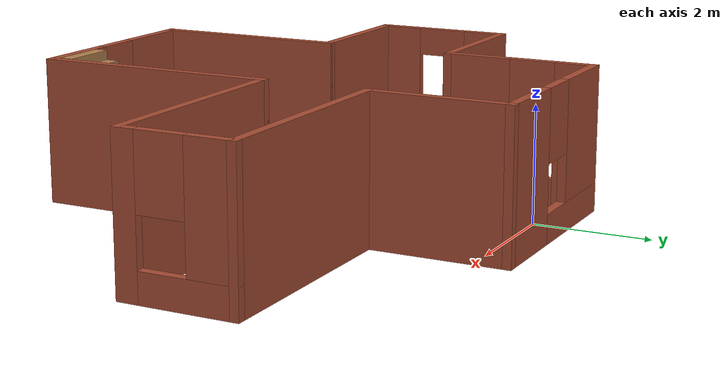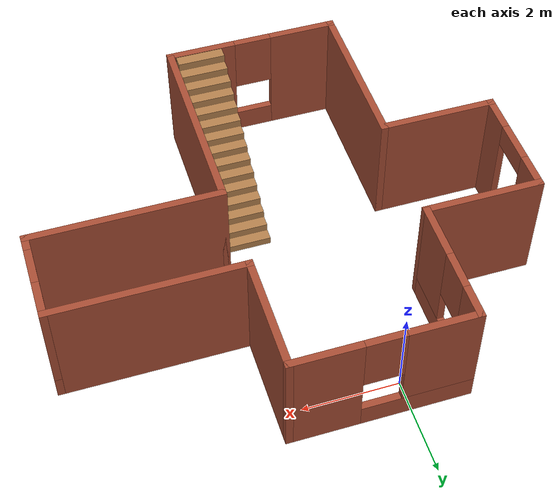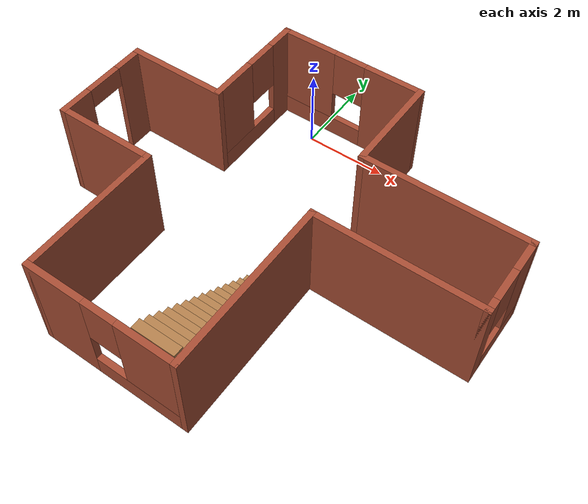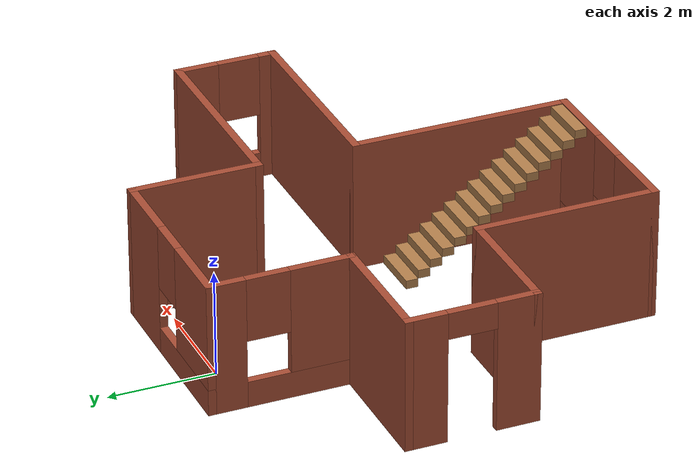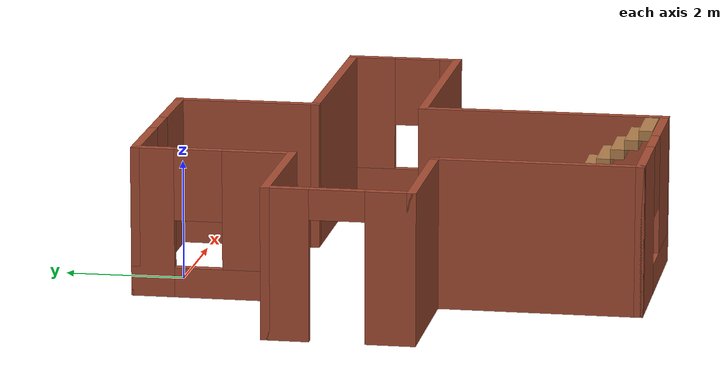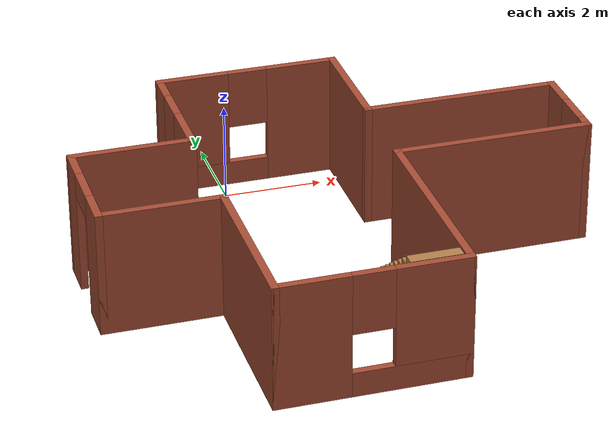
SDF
<?xml version='1.0'?>
<sdf version='1.7'>
  <model name='building'>
    <pose>1.3885 -3.598 0 0 -0 0</pose>
    <link name='Stairs_0'>
      <visual name='Stairs_0_Visual_0'>
        <pose>0.446582 -0.679804 0.083333 0 -0 0</pose>
        <geometry>
          <box>
            <size>1 0.233333 0.166667</size>
          </box>
        </geometry>
        <material>
          <script>
            <uri>file://media/materials/scripts/gazebo.material</uri>
            <name>Gazebo/Wood</name>
          </script>
          <ambient>1 1 1 1</ambient>
        </material>
        <meta>
          <layer>0</layer>
        </meta>
      </visual>
      <collision name='Stairs_0_Collision_0'>
        <geometry>
          <box>
            <size>1 0.233333 0.166667</size>
          </box>
        </geometry>
        <pose>0.446582 -0.679804 0.083333 0 -0 0</pose>
      </collision>
      <visual name='Stairs_0_Visual_1'>
        <pose>0.446582 -0.913137 0.25 0 -0 0</pose>
        <geometry>
          <box>
            <size>1 0.233333 0.166667</size>
          </box>
        </geometry>
        <material>
          <script>
            <uri>file://media/materials/scripts/gazebo.material</uri>
            <name>Gazebo/Wood</name>
          </script>
          <ambient>1 1 1 1</ambient>
        </material>
        <meta>
          <layer>0</layer>
        </meta>
      </visual>
      <collision name='Stairs_0_Collision_1'>
        <geometry>
          <box>
            <size>1 0.233333 0.166667</size>
          </box>
        </geometry>
        <pose>0.446582 -0.913137 0.25 0 -0 0</pose>
      </collision>
      <visual name='Stairs_0_Visual_2'>
        <pose>0.446582 -1.14647 0.416667 0 -0 0</pose>
        <geometry>
          <box>
            <size>1 0.233333 0.166667</size>
          </box>
        </geometry>
        <material>
          <script>
            <uri>file://media/materials/scripts/gazebo.material</uri>
            <name>Gazebo/Wood</name>
          </script>
          <ambient>1 1 1 1</ambient>
        </material>
        <meta>
          <layer>0</layer>
        </meta>
      </visual>
      <collision name='Stairs_0_Collision_2'>
        <geometry>
          <box>
            <size>1 0.233333 0.166667</size>
          </box>
        </geometry>
        <pose>0.446582 -1.14647 0.416667 0 -0 0</pose>
      </collision>
      <visual name='Stairs_0_Visual_3'>
        <pose>0.446582 -1.3798 0.583333 0 -0 0</pose>
        <geometry>
          <box>
            <size>1 0.233333 0.166667</size>
          </box>
        </geometry>
        <material>
          <script>
            <uri>file://media/materials/scripts/gazebo.material</uri>
            <name>Gazebo/Wood</name>
          </script>
          <ambient>1 1 1 1</ambient>
        </material>
        <meta>
          <layer>0</layer>
        </meta>
      </visual>
      <collision name='Stairs_0_Collision_3'>
        <geometry>
          <box>
            <size>1 0.233333 0.166667</size>
          </box>
        </geometry>
        <pose>0.446582 -1.3798 0.583333 0 -0 0</pose>
      </collision>
      <visual name='Stairs_0_Visual_4'>
        <pose>0.446582 -1.61314 0.75 0 -0 0</pose>
        <geometry>
          <box>
            <size>1 0.233333 0.166667</size>
          </box>
        </geometry>
        <material>
          <script>
            <uri>file://media/materials/scripts/gazebo.material</uri>
            <name>Gazebo/Wood</name>
          </script>
          <ambient>1 1 1 1</ambient>
        </material>
        <meta>
          <layer>0</layer>
        </meta>
      </visual>
      <collision name='Stairs_0_Collision_4'>
        <geometry>
          <box>
            <size>1 0.233333 0.166667</size>
          </box>
        </geometry>
        <pose>0.446582 -1.61314 0.75 0 -0 0</pose>
      </collision>
      <visual name='Stairs_0_Visual_5'>
        <pose>0.446582 -1.84647 0.916667 0 -0 0</pose>
        <geometry>
          <box>
            <size>1 0.233333 0.166667</size>
          </box>
        </geometry>
        <material>
          <script>
            <uri>file://media/materials/scripts/gazebo.material</uri>
            <name>Gazebo/Wood</name>
          </script>
          <ambient>1 1 1 1</ambient>
        </material>
        <meta>
          <layer>0</layer>
        </meta>
      </visual>
      <collision name='Stairs_0_Collision_5'>
        <geometry>
          <box>
            <size>1 0.233333 0.166667</size>
          </box>
        </geometry>
        <pose>0.446582 -1.84647 0.916667 0 -0 0</pose>
      </collision>
      <visual name='Stairs_0_Visual_6'>
        <pose>0.446582 -2.0798 1.08333 0 -0 0</pose>
        <geometry>
          <box>
            <size>1 0.233333 0.166667</size>
          </box>
        </geometry>
        <material>
          <script>
            <uri>file://media/materials/scripts/gazebo.material</uri>
            <name>Gazebo/Wood</name>
          </script>
          <ambient>1 1 1 1</ambient>
        </material>
        <meta>
          <layer>0</layer>
        </meta>
      </visual>
      <collision name='Stairs_0_Collision_6'>
        <geometry>
          <box>
            <size>1 0.233333 0.166667</size>
          </box>
        </geometry>
        <pose>0.446582 -2.0798 1.08333 0 -0 0</pose>
      </collision>
      <visual name='Stairs_0_Visual_7'>
        <pose>0.446582 -2.31314 1.25 0 -0 0</pose>
        <geometry>
          <box>
            <size>1 0.233333 0.166667</size>
          </box>
        </geometry>
        <material>
          <script>
            <uri>file://media/materials/scripts/gazebo.material</uri>
            <name>Gazebo/Wood</name>
          </script>
          <ambient>1 1 1 1</ambient>
        </material>
        <meta>
          <layer>0</layer>
        </meta>
      </visual>
      <collision name='Stairs_0_Collision_7'>
        <geometry>
          <box>
            <size>1 0.233333 0.166667</size>
          </box>
        </geometry>
        <pose>0.446582 -2.31314 1.25 0 -0 0</pose>
      </collision>
      <visual name='Stairs_0_Visual_8'>
        <pose>0.446582 -2.54647 1.41667 0 -0 0</pose>
        <geometry>
          <box>
            <size>1 0.233333 0.166667</size>
          </box>
        </geometry>
        <material>
          <script>
            <uri>file://media/materials/scripts/gazebo.material</uri>
            <name>Gazebo/Wood</name>
          </script>
          <ambient>1 1 1 1</ambient>
        </material>
        <meta>
          <layer>0</layer>
        </meta>
      </visual>
      <collision name='Stairs_0_Collision_8'>
        <geometry>
          <box>
            <size>1 0.233333 0.166667</size>
          </box>
        </geometry>
        <pose>0.446582 -2.54647 1.41667 0 -0 0</pose>
      </collision>
      <visual name='Stairs_0_Visual_9'>
        <pose>0.446582 -2.7798 1.58333 0 -0 0</pose>
        <geometry>
          <box>
            <size>1 0.233333 0.166667</size>
          </box>
        </geometry>
        <material>
          <script>
            <uri>file://media/materials/scripts/gazebo.material</uri>
            <name>Gazebo/Wood</name>
          </script>
          <ambient>1 1 1 1</ambient>
        </material>
        <meta>
          <layer>0</layer>
        </meta>
      </visual>
      <collision name='Stairs_0_Collision_9'>
        <geometry>
          <box>
            <size>1 0.233333 0.166667</size>
          </box>
        </geometry>
        <pose>0.446582 -2.7798 1.58333 0 -0 0</pose>
      </collision>
      <visual name='Stairs_0_Visual_10'>
        <pose>0.446582 -3.01314 1.75 0 -0 0</pose>
        <geometry>
          <box>
            <size>1 0.233333 0.166667</size>
          </box>
        </geometry>
        <material>
          <script>
            <uri>file://media/materials/scripts/gazebo.material</uri>
            <name>Gazebo/Wood</name>
          </script>
          <ambient>1 1 1 1</ambient>
        </material>
        <meta>
          <layer>0</layer>
        </meta>
      </visual>
      <collision name='Stairs_0_Collision_10'>
        <geometry>
          <box>
            <size>1 0.233333 0.166667</size>
          </box>
        </geometry>
        <pose>0.446582 -3.01314 1.75 0 -0 0</pose>
      </collision>
      <visual name='Stairs_0_Visual_11'>
        <pose>0.446582 -3.24647 1.91667 0 -0 0</pose>
        <geometry>
          <box>
            <size>1 0.233333 0.166667</size>
          </box>
        </geometry>
        <material>
          <script>
            <uri>file://media/materials/scripts/gazebo.material</uri>
            <name>Gazebo/Wood</name>
          </script>
          <ambient>1 1 1 1</ambient>
        </material>
        <meta>
          <layer>0</layer>
        </meta>
      </visual>
      <collision name='Stairs_0_Collision_11'>
        <geometry>
          <box>
            <size>1 0.233333 0.166667</size>
          </box>
        </geometry>
        <pose>0.446582 -3.24647 1.91667 0 -0 0</pose>
      </collision>
      <visual name='Stairs_0_Visual_12'>
        <pose>0.446582 -3.4798 2.08333 0 -0 0</pose>
        <geometry>
          <box>
            <size>1 0.233333 0.166667</size>
          </box>
        </geometry>
        <material>
          <script>
            <uri>file://media/materials/scripts/gazebo.material</uri>
            <name>Gazebo/Wood</name>
          </script>
          <ambient>1 1 1 1</ambient>
        </material>
        <meta>
          <layer>0</layer>
        </meta>
      </visual>
      <collision name='Stairs_0_Collision_12'>
        <geometry>
          <box>
            <size>1 0.233333 0.166667</size>
          </box>
        </geometry>
        <pose>0.446582 -3.4798 2.08333 0 -0 0</pose>
      </collision>
      <visual name='Stairs_0_Visual_13'>
        <pose>0.446582 -3.71314 2.25 0 -0 0</pose>
        <geometry>
          <box>
            <size>1 0.233333 0.166667</size>
          </box>
        </geometry>
        <material>
          <script>
            <uri>file://media/materials/scripts/gazebo.material</uri>
            <name>Gazebo/Wood</name>
          </script>
          <ambient>1 1 1 1</ambient>
        </material>
        <meta>
          <layer>0</layer>
        </meta>
      </visual>
      <collision name='Stairs_0_Collision_13'>
        <geometry>
          <box>
            <size>1 0.233333 0.166667</size>
          </box>
        </geometry>
        <pose>0.446582 -3.71314 2.25 0 -0 0</pose>
      </collision>
      <visual name='Stairs_0_Visual_14'>
        <pose>0.446582 -3.94647 2.41667 0 -0 0</pose>
        <geometry>
          <box>
            <size>1 0.233333 0.166667</size>
          </box>
        </geometry>
        <material>
          <script>
            <uri>file://media/materials/scripts/gazebo.material</uri>
            <name>Gazebo/Wood</name>
          </script>
          <ambient>1 1 1 1</ambient>
        </material>
        <meta>
          <layer>0</layer>
        </meta>
      </visual>
      <collision name='Stairs_0_Collision_14'>
        <geometry>
          <box>
            <size>1 0.233333 0.166667</size>
          </box>
        </geometry>
        <pose>0.446582 -3.94647 2.41667 0 -0 0</pose>
      </collision>
    </link>
    <link name='Wall_12'>
      <collision name='Wall_12_Collision'>
        <geometry>
          <box>
            <size>3.5 0.15 2.5</size>
          </box>
        </geometry>
        <pose>0 0 1.25 0 -0 0</pose>
      </collision>
      <visual name='Wall_12_Visual'>
        <pose>0 0 1.25 0 -0 0</pose>
        <geometry>
          <box>
            <size>3.5 0.15 2.5</size>
          </box>
        </geometry>
        <material>
          <script>
            <uri>file://media/materials/scripts/gazebo.material</uri>
            <name>Gazebo/Bricks</name>
          </script>
          <ambient>1 1 1 1</ambient>
        </material>
        <meta>
          <layer>0</layer>
        </meta>
      </visual>
      <pose>-2.55 -2.475 0 0 -0 -1.5708</pose>
    </link>
    <link name='Wall_13'>
      <pose>-0.75 -4.15 0 0 -0 0</pose>
      <visual name='Wall_13_Visual_0'>
        <pose>-1.14061 0 1.25 0 -0 0</pose>
        <geometry>
          <box>
            <size>1.46879 0.15 2.5</size>
          </box>
        </geometry>
        <material>
          <script>
            <uri>file://media/materials/scripts/gazebo.material</uri>
            <name>Gazebo/Bricks</name>
          </script>
          <ambient>1 1 1 1</ambient>
        </material>
        <meta>
          <layer>0</layer>
        </meta>
      </visual>
      <collision name='Wall_13_Collision_0'>
        <geometry>
          <box>
            <size>1.46879 0.15 2.5</size>
          </box>
        </geometry>
        <pose>-1.14061 0 1.25 0 -0 0</pose>
      </collision>
      <visual name='Wall_13_Visual_1'>
        <pose>0.734395 0 0.25 0 -0 0</pose>
        <geometry>
          <box>
            <size>2.28121 0.15 0.5</size>
          </box>
        </geometry>
        <material>
          <script>
            <uri>file://media/materials/scripts/gazebo.material</uri>
            <name>Gazebo/Bricks</name>
          </script>
          <ambient>1 1 1 1</ambient>
        </material>
        <meta>
          <layer>0</layer>
        </meta>
      </visual>
      <collision name='Wall_13_Collision_1'>
        <geometry>
          <box>
            <size>2.28121 0.15 0.5</size>
          </box>
        </geometry>
        <pose>0.734395 0 0.25 0 -0 0</pose>
      </collision>
      <visual name='Wall_13_Visual_2'>
        <pose>1.1344 0 1.5 0 -0 0</pose>
        <geometry>
          <box>
            <size>1.48121 0.15 2</size>
          </box>
        </geometry>
        <material>
          <script>
            <uri>file://media/materials/scripts/gazebo.material</uri>
            <name>Gazebo/Bricks</name>
          </script>
          <ambient>1 1 1 1</ambient>
        </material>
        <meta>
          <layer>0</layer>
        </meta>
      </visual>
      <collision name='Wall_13_Collision_2'>
        <geometry>
          <box>
            <size>1.48121 0.15 2</size>
          </box>
        </geometry>
        <pose>1.1344 0 1.5 0 -0 0</pose>
      </collision>
      <visual name='Wall_13_Visual_3'>
        <pose>-0.006209 0 1.9 0 -0 0</pose>
        <geometry>
          <box>
            <size>0.8 0.15 1.2</size>
          </box>
        </geometry>
        <material>
          <script>
            <uri>file://media/materials/scripts/gazebo.material</uri>
            <name>Gazebo/Bricks</name>
          </script>
          <ambient>1 1 1 1</ambient>
        </material>
        <meta>
          <layer>0</layer>
        </meta>
      </visual>
      <collision name='Wall_13_Collision_3'>
        <geometry>
          <box>
            <size>0.8 0.15 1.2</size>
          </box>
        </geometry>
        <pose>-0.006209 0 1.9 0 -0 0</pose>
      </collision>
    </link>
    <link name='Wall_14'>
      <collision name='Wall_14_Collision'>
        <geometry>
          <box>
            <size>4.25 0.15 2.5</size>
          </box>
        </geometry>
        <pose>0 0 1.25 0 -0 0</pose>
      </collision>
      <visual name='Wall_14_Visual'>
        <pose>0 0 1.25 0 -0 0</pose>
        <geometry>
          <box>
            <size>4.25 0.15 2.5</size>
          </box>
        </geometry>
        <material>
          <script>
            <uri>file://media/materials/scripts/gazebo.material</uri>
            <name>Gazebo/Bricks</name>
          </script>
          <ambient>1 1 1 1</ambient>
        </material>
        <meta>
          <layer>0</layer>
        </meta>
      </visual>
      <pose>1.05 -2.1 0 0 -0 1.5708</pose>
    </link>
    <link name='Wall_15'>
      <collision name='Wall_15_Collision'>
        <geometry>
          <box>
            <size>4 0.15 2.5</size>
          </box>
        </geometry>
        <pose>0 0 1.25 0 -0 0</pose>
      </collision>
      <visual name='Wall_15_Visual'>
        <pose>0 0 1.25 0 -0 0</pose>
        <geometry>
          <box>
            <size>4 0.15 2.5</size>
          </box>
        </geometry>
        <material>
          <script>
            <uri>file://media/materials/scripts/gazebo.material</uri>
            <name>Gazebo/Bricks</name>
          </script>
          <ambient>1 1 1 1</ambient>
        </material>
        <meta>
          <layer>0</layer>
        </meta>
      </visual>
      <pose>2.975 -0.05 0 0 -0 0</pose>
    </link>
    <link name='Wall_16'>
      <pose>4.9 0.875 0 0 -0 1.5708</pose>
      <visual name='Wall_16_Visual_0'>
        <pose>-0.813709 0 1.25 0 -0 0</pose>
        <geometry>
          <box>
            <size>0.372581 0.15 2.5</size>
          </box>
        </geometry>
        <material>
          <script>
            <uri>file://media/materials/scripts/gazebo.material</uri>
            <name>Gazebo/Bricks</name>
          </script>
          <ambient>1 1 1 1</ambient>
        </material>
        <meta>
          <layer>0</layer>
        </meta>
      </visual>
      <collision name='Wall_16_Collision_0'>
        <geometry>
          <box>
            <size>0.372581 0.15 2.5</size>
          </box>
        </geometry>
        <pose>-0.813709 0 1.25 0 -0 0</pose>
      </collision>
      <visual name='Wall_16_Visual_1'>
        <pose>0.186291 0 0.25 0 -0 0</pose>
        <geometry>
          <box>
            <size>1.62742 0.15 0.5</size>
          </box>
        </geometry>
        <material>
          <script>
            <uri>file://media/materials/scripts/gazebo.material</uri>
            <name>Gazebo/Bricks</name>
          </script>
          <ambient>1 1 1 1</ambient>
        </material>
        <meta>
          <layer>0</layer>
        </meta>
      </visual>
      <collision name='Wall_16_Collision_1'>
        <geometry>
          <box>
            <size>1.62742 0.15 0.5</size>
          </box>
        </geometry>
        <pose>0.186291 0 0.25 0 -0 0</pose>
      </collision>
      <visual name='Wall_16_Visual_2'>
        <pose>0.586291 0 1.5 0 -0 0</pose>
        <geometry>
          <box>
            <size>0.827419 0.15 2</size>
          </box>
        </geometry>
        <material>
          <script>
            <uri>file://media/materials/scripts/gazebo.material</uri>
            <name>Gazebo/Bricks</name>
          </script>
          <ambient>1 1 1 1</ambient>
        </material>
        <meta>
          <layer>0</layer>
        </meta>
      </visual>
      <collision name='Wall_16_Collision_2'>
        <geometry>
          <box>
            <size>0.827419 0.15 2</size>
          </box>
        </geometry>
        <pose>0.586291 0 1.5 0 -0 0</pose>
      </collision>
      <visual name='Wall_16_Visual_3'>
        <pose>-0.227419 0 1.9 0 -0 0</pose>
        <geometry>
          <box>
            <size>0.8 0.15 1.2</size>
          </box>
        </geometry>
        <material>
          <script>
            <uri>file://media/materials/scripts/gazebo.material</uri>
            <name>Gazebo/Bricks</name>
          </script>
          <ambient>1 1 1 1</ambient>
        </material>
        <meta>
          <layer>0</layer>
        </meta>
      </visual>
      <collision name='Wall_16_Collision_3'>
        <geometry>
          <box>
            <size>0.8 0.15 1.2</size>
          </box>
        </geometry>
        <pose>-0.227419 0 1.9 0 -0 0</pose>
      </collision>
    </link>
    <link name='Wall_17'>
      <collision name='Wall_17_Collision'>
        <geometry>
          <box>
            <size>4 0.15 2.5</size>
          </box>
        </geometry>
        <pose>0 0 1.25 0 -0 0</pose>
      </collision>
      <visual name='Wall_17_Visual'>
        <pose>0 0 1.25 0 -0 0</pose>
        <geometry>
          <box>
            <size>4 0.15 2.5</size>
          </box>
        </geometry>
        <material>
          <script>
            <uri>file://media/materials/scripts/gazebo.material</uri>
            <name>Gazebo/Bricks</name>
          </script>
          <ambient>1 1 1 1</ambient>
        </material>
        <meta>
          <layer>0</layer>
        </meta>
      </visual>
      <pose>2.975 1.8 0 0 -0 3.14159</pose>
    </link>
    <link name='Wall_18'>
      <collision name='Wall_18_Collision'>
        <geometry>
          <box>
            <size>2.5 0.15 2.5</size>
          </box>
        </geometry>
        <pose>0 0 1.25 0 -0 0</pose>
      </collision>
      <visual name='Wall_18_Visual'>
        <pose>0 0 1.25 0 -0 0</pose>
        <geometry>
          <box>
            <size>2.5 0.15 2.5</size>
          </box>
        </geometry>
        <material>
          <script>
            <uri>file://media/materials/scripts/gazebo.material</uri>
            <name>Gazebo/Bricks</name>
          </script>
          <ambient>1 1 1 1</ambient>
        </material>
        <meta>
          <layer>0</layer>
        </meta>
      </visual>
      <pose>1.05 2.975 0 0 -0 1.5708</pose>
    </link>
    <link name='Wall_19'>
      <pose>-0.75 4.15 0 0 -0 3.14159</pose>
      <visual name='Wall_19_Visual_0'>
        <pose>-1.1344 0 1.25 0 -0 0</pose>
        <geometry>
          <box>
            <size>1.48121 0.15 2.5</size>
          </box>
        </geometry>
        <material>
          <script>
            <uri>file://media/materials/scripts/gazebo.material</uri>
            <name>Gazebo/Bricks</name>
          </script>
          <ambient>1 1 1 1</ambient>
        </material>
        <meta>
          <layer>0</layer>
        </meta>
      </visual>
      <collision name='Wall_19_Collision_0'>
        <geometry>
          <box>
            <size>1.48121 0.15 2.5</size>
          </box>
        </geometry>
        <pose>-1.1344 0 1.25 0 -0 0</pose>
      </collision>
      <visual name='Wall_19_Visual_1'>
        <pose>0.740605 0 0.25 0 -0 0</pose>
        <geometry>
          <box>
            <size>2.26879 0.15 0.5</size>
          </box>
        </geometry>
        <material>
          <script>
            <uri>file://media/materials/scripts/gazebo.material</uri>
            <name>Gazebo/Bricks</name>
          </script>
          <ambient>1 1 1 1</ambient>
        </material>
        <meta>
          <layer>0</layer>
        </meta>
      </visual>
      <collision name='Wall_19_Collision_1'>
        <geometry>
          <box>
            <size>2.26879 0.15 0.5</size>
          </box>
        </geometry>
        <pose>0.740605 0 0.25 0 -0 0</pose>
      </collision>
      <visual name='Wall_19_Visual_2'>
        <pose>1.14061 0 1.5 0 -0 0</pose>
        <geometry>
          <box>
            <size>1.46879 0.15 2</size>
          </box>
        </geometry>
        <material>
          <script>
            <uri>file://media/materials/scripts/gazebo.material</uri>
            <name>Gazebo/Bricks</name>
          </script>
          <ambient>1 1 1 1</ambient>
        </material>
        <meta>
          <layer>0</layer>
        </meta>
      </visual>
      <collision name='Wall_19_Collision_2'>
        <geometry>
          <box>
            <size>1.46879 0.15 2</size>
          </box>
        </geometry>
        <pose>1.14061 0 1.5 0 -0 0</pose>
      </collision>
      <visual name='Wall_19_Visual_3'>
        <pose>0.006209 0 1.9 0 -0 0</pose>
        <geometry>
          <box>
            <size>0.8 0.15 1.2</size>
          </box>
        </geometry>
        <material>
          <script>
            <uri>file://media/materials/scripts/gazebo.material</uri>
            <name>Gazebo/Bricks</name>
          </script>
          <ambient>1 1 1 1</ambient>
        </material>
        <meta>
          <layer>0</layer>
        </meta>
      </visual>
      <collision name='Wall_19_Collision_3'>
        <geometry>
          <box>
            <size>0.8 0.15 1.2</size>
          </box>
        </geometry>
        <pose>0.006209 0 1.9 0 -0 0</pose>
      </collision>
    </link>
    <link name='Wall_20'>
      <pose>-2.55 2.8633 0 0 -0 -1.5708</pose>
      <visual name='Wall_20_Visual_0'>
        <pose>-0.998913 0 1.25 0 -0 0</pose>
        <geometry>
          <box>
            <size>0.725574 0.15 2.5</size>
          </box>
        </geometry>
        <material>
          <script>
            <uri>file://media/materials/scripts/gazebo.material</uri>
            <name>Gazebo/Bricks</name>
          </script>
          <ambient>1 1 1 1</ambient>
        </material>
        <meta>
          <layer>0</layer>
        </meta>
      </visual>
      <collision name='Wall_20_Collision_0'>
        <geometry>
          <box>
            <size>0.725574 0.15 2.5</size>
          </box>
        </geometry>
        <pose>-0.998913 0 1.25 0 -0 0</pose>
      </collision>
      <visual name='Wall_20_Visual_1'>
        <pose>0.362787 0 0.25 0 -0 0</pose>
        <geometry>
          <box>
            <size>1.99782 0.15 0.5</size>
          </box>
        </geometry>
        <material>
          <script>
            <uri>file://media/materials/scripts/gazebo.material</uri>
            <name>Gazebo/Bricks</name>
          </script>
          <ambient>1 1 1 1</ambient>
        </material>
        <meta>
          <layer>0</layer>
        </meta>
      </visual>
      <collision name='Wall_20_Collision_1'>
        <geometry>
          <box>
            <size>1.99782 0.15 0.5</size>
          </box>
        </geometry>
        <pose>0.362787 0 0.25 0 -0 0</pose>
      </collision>
      <visual name='Wall_20_Visual_2'>
        <pose>0.762787 0 1.5 0 -0 0</pose>
        <geometry>
          <box>
            <size>1.19782 0.15 2</size>
          </box>
        </geometry>
        <material>
          <script>
            <uri>file://media/materials/scripts/gazebo.material</uri>
            <name>Gazebo/Bricks</name>
          </script>
          <ambient>1 1 1 1</ambient>
        </material>
        <meta>
          <layer>0</layer>
        </meta>
      </visual>
      <collision name='Wall_20_Collision_2'>
        <geometry>
          <box>
            <size>1.19782 0.15 2</size>
          </box>
        </geometry>
        <pose>0.762787 0 1.5 0 -0 0</pose>
      </collision>
      <visual name='Wall_20_Visual_3'>
        <pose>-0.236125 0 1.9 0 -0 0</pose>
        <geometry>
          <box>
            <size>0.8 0.15 1.2</size>
          </box>
        </geometry>
        <material>
          <script>
            <uri>file://media/materials/scripts/gazebo.material</uri>
            <name>Gazebo/Bricks</name>
          </script>
          <ambient>1 1 1 1</ambient>
        </material>
        <meta>
          <layer>0</layer>
        </meta>
      </visual>
      <collision name='Wall_20_Collision_3'>
        <geometry>
          <box>
            <size>0.8 0.15 1.2</size>
          </box>
        </geometry>
        <pose>-0.236125 0 1.9 0 -0 0</pose>
      </collision>
    </link>
    <link name='Wall_7'>
      <collision name='Wall_7_Collision'>
        <geometry>
          <box>
            <size>2.5 0.15 2.5</size>
          </box>
        </geometry>
        <pose>0 0 1.25 0 -0 0</pose>
      </collision>
      <visual name='Wall_7_Visual'>
        <pose>0 0 1.25 0 -0 0</pose>
        <geometry>
          <box>
            <size>2.5 0.15 2.5</size>
          </box>
        </geometry>
        <material>
          <script>
            <uri>file://media/materials/scripts/gazebo.material</uri>
            <name>Gazebo/Bricks</name>
          </script>
          <ambient>1 1 1 1</ambient>
        </material>
        <meta>
          <layer>0</layer>
        </meta>
      </visual>
      <pose>-3.725 1.55 0 0 -0 3.14159</pose>
    </link>
    <link name='Wall_8'>
      <pose>-4.9 0.375 0 0 -0 -1.5708</pose>
      <visual name='Wall_8_Visual_0'>
        <pose>-0.859072 0 1.25 0 -0 0</pose>
        <geometry>
          <box>
            <size>0.781856 0.15 2.5</size>
          </box>
        </geometry>
        <material>
          <script>
            <uri>file://media/materials/scripts/gazebo.material</uri>
            <name>Gazebo/Bricks</name>
          </script>
          <ambient>1 1 1 1</ambient>
        </material>
        <meta>
          <layer>0</layer>
        </meta>
      </visual>
      <collision name='Wall_8_Collision_0'>
        <geometry>
          <box>
            <size>0.781856 0.15 2.5</size>
          </box>
        </geometry>
        <pose>-0.859072 0 1.25 0 -0 0</pose>
      </collision>
      <visual name='Wall_8_Visual_1'>
        <pose>0.840928 0 1.25 0 -0 0</pose>
        <geometry>
          <box>
            <size>0.818144 0.15 2.5</size>
          </box>
        </geometry>
        <material>
          <script>
            <uri>file://media/materials/scripts/gazebo.material</uri>
            <name>Gazebo/Bricks</name>
          </script>
          <ambient>1 1 1 1</ambient>
        </material>
        <meta>
          <layer>0</layer>
        </meta>
      </visual>
      <collision name='Wall_8_Collision_1'>
        <geometry>
          <box>
            <size>0.818144 0.15 2.5</size>
          </box>
        </geometry>
        <pose>0.840928 0 1.25 0 -0 0</pose>
      </collision>
      <visual name='Wall_8_Visual_2'>
        <pose>-0.018144 0 2.25 0 -0 0</pose>
        <geometry>
          <box>
            <size>0.9 0.15 0.5</size>
          </box>
        </geometry>
        <material>
          <script>
            <uri>file://media/materials/scripts/gazebo.material</uri>
            <name>Gazebo/Bricks</name>
          </script>
          <ambient>1 1 1 1</ambient>
        </material>
        <meta>
          <layer>0</layer>
        </meta>
      </visual>
      <collision name='Wall_8_Collision_2'>
        <geometry>
          <box>
            <size>0.9 0.15 0.5</size>
          </box>
        </geometry>
        <pose>-0.018144 0 2.25 0 -0 0</pose>
      </collision>
    </link>
    <link name='Wall_9'>
      <collision name='Wall_9_Collision'>
        <geometry>
          <box>
            <size>2.5 0.15 2.5</size>
          </box>
        </geometry>
        <pose>0 0 1.25 0 -0 0</pose>
      </collision>
      <visual name='Wall_9_Visual'>
        <pose>0 0 1.25 0 -0 0</pose>
        <geometry>
          <box>
            <size>2.5 0.15 2.5</size>
          </box>
        </geometry>
        <material>
          <script>
            <uri>file://media/materials/scripts/gazebo.material</uri>
            <name>Gazebo/Bricks</name>
          </script>
          <ambient>1 1 1 1</ambient>
        </material>
        <meta>
          <layer>0</layer>
        </meta>
      </visual>
      <pose>-3.725 -0.8 0 0 -0 0</pose>
    </link>
    <static>1</static>
  </model>
</sdf>
